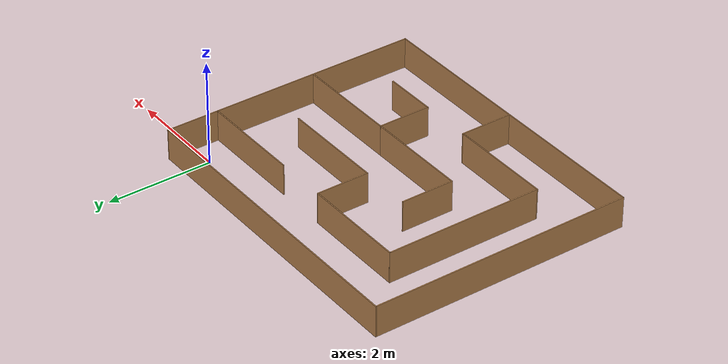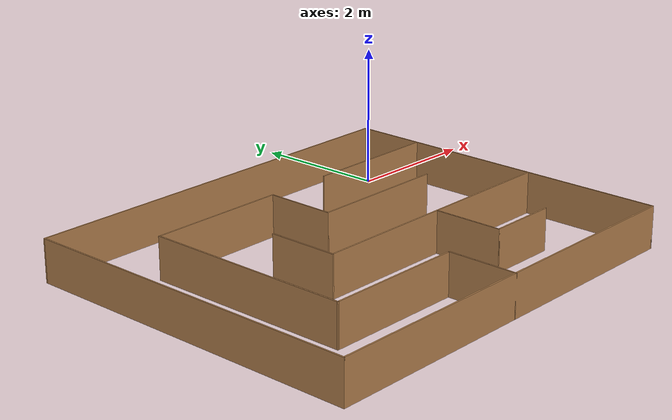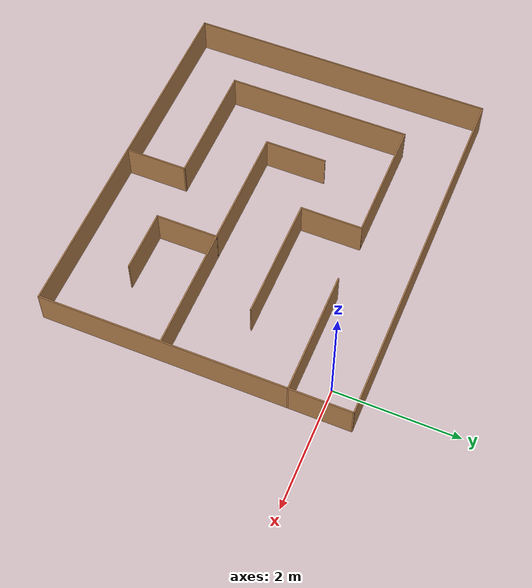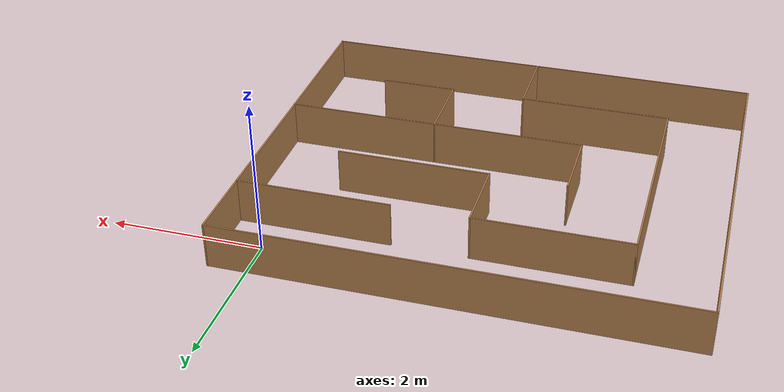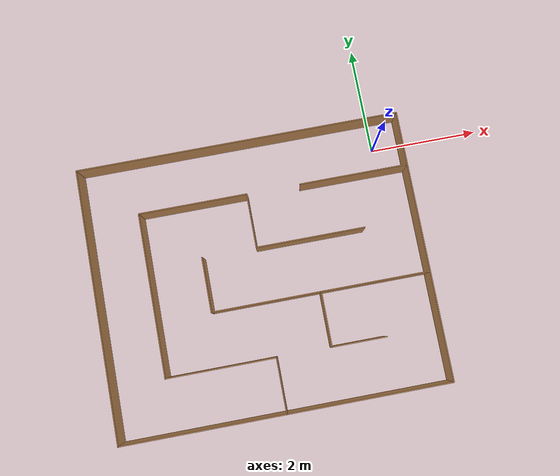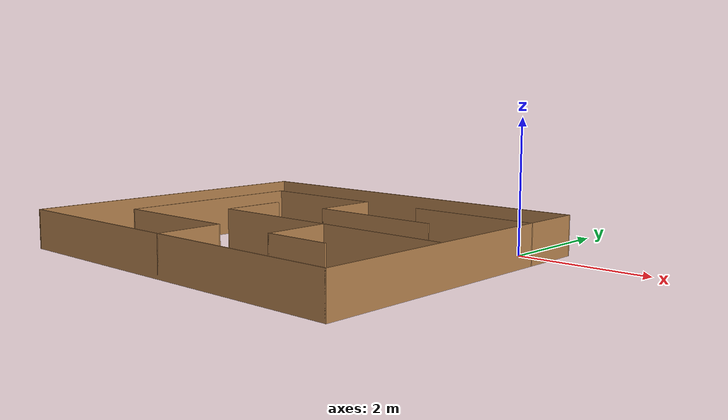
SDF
<?xml version='1.0'?>
<sdf version='1.7'>
  <model name='maze_24'>
    <pose>-2.5 -2 0 0 -0 0</pose>
    <link name='Wall_0'>
      <collision name='Wall_0_Collision'>
        <geometry>
          <box>
            <size>6.02 0.02 0.6</size>
          </box>
        </geometry>
        <pose>0 0 0.3 0 -0 0</pose>
      </collision>
      <visual name='Wall_0_Visual'>
        <pose>0 0 0.3 0 -0 0</pose>
        <geometry>
          <box>
            <size>6.02 0.02 0.6</size>
          </box>
        </geometry>
        <material>
          <script>
            <uri>file://media/materials/scripts/gazebo.material</uri>
            <name>Gazebo/Wood</name>
          </script>
          <ambient>1 1 1 1</ambient>
        </material>
        <meta>
          <layer>0</layer>
        </meta>
      </visual>
      <pose>-0 2.5 0 0 -0 3.14159</pose>
    </link>
    <link name='Wall_10'>
      <collision name='Wall_10_Collision'>
        <geometry>
          <box>
            <size>2.02 0.02 0.6</size>
          </box>
        </geometry>
        <pose>0 0 0.3 0 -0 0</pose>
      </collision>
      <visual name='Wall_10_Visual'>
        <pose>0 0 0.3 0 -0 0</pose>
        <geometry>
          <box>
            <size>2.02 0.02 0.6</size>
          </box>
        </geometry>
        <material>
          <script>
            <uri>file://media/materials/scripts/gazebo.material</uri>
            <name>Gazebo/Wood</name>
          </script>
          <ambient>1 1 1 1</ambient>
        </material>
        <meta>
          <layer>0</layer>
        </meta>
      </visual>
      <pose>-1 -1.5 0 0 -0 3.14159</pose>
    </link>
    <link name='Wall_12'>
      <collision name='Wall_12_Collision'>
        <geometry>
          <box>
            <size>3.02 0.02 0.6</size>
          </box>
        </geometry>
        <pose>0 0 0.3 0 -0 0</pose>
      </collision>
      <visual name='Wall_12_Visual'>
        <pose>0 0 0.3 0 -0 0</pose>
        <geometry>
          <box>
            <size>3.02 0.02 0.6</size>
          </box>
        </geometry>
        <material>
          <script>
            <uri>file://media/materials/scripts/gazebo.material</uri>
            <name>Gazebo/Wood</name>
          </script>
          <ambient>1 1 1 1</ambient>
        </material>
        <meta>
          <layer>0</layer>
        </meta>
      </visual>
      <pose>-2 0 0 0 -0 1.5708</pose>
    </link>
    <link name='Wall_14'>
      <collision name='Wall_14_Collision'>
        <geometry>
          <box>
            <size>2.02 0.02 0.6</size>
          </box>
        </geometry>
        <pose>0 0 0.3 0 -0 0</pose>
      </collision>
      <visual name='Wall_14_Visual'>
        <pose>0 0 0.3 0 -0 0</pose>
        <geometry>
          <box>
            <size>2.02 0.02 0.6</size>
          </box>
        </geometry>
        <material>
          <script>
            <uri>file://media/materials/scripts/gazebo.material</uri>
            <name>Gazebo/Wood</name>
          </script>
          <ambient>1 1 1 1</ambient>
        </material>
        <meta>
          <layer>0</layer>
        </meta>
      </visual>
      <pose>-1 1.5 0 0 -0 0</pose>
    </link>
    <link name='Wall_16'>
      <collision name='Wall_16_Collision'>
        <geometry>
          <box>
            <size>1.02 0.02 0.6</size>
          </box>
        </geometry>
        <pose>0 0 0.3 0 -0 0</pose>
      </collision>
      <visual name='Wall_16_Visual'>
        <pose>0 0 0.3 0 -0 0</pose>
        <geometry>
          <box>
            <size>1.02 0.02 0.6</size>
          </box>
        </geometry>
        <material>
          <script>
            <uri>file://media/materials/scripts/gazebo.material</uri>
            <name>Gazebo/Wood</name>
          </script>
          <ambient>1 1 1 1</ambient>
        </material>
        <meta>
          <layer>0</layer>
        </meta>
      </visual>
      <pose>-1 0 0 0 -0 -1.5708</pose>
    </link>
    <link name='Wall_18'>
      <collision name='Wall_18_Collision'>
        <geometry>
          <box>
            <size>2.02 0.02 0.6</size>
          </box>
        </geometry>
        <pose>0 0 0.3 0 -0 0</pose>
      </collision>
      <visual name='Wall_18_Visual'>
        <pose>0 0 0.3 0 -0 0</pose>
        <geometry>
          <box>
            <size>2.02 0.02 0.6</size>
          </box>
        </geometry>
        <material>
          <script>
            <uri>file://media/materials/scripts/gazebo.material</uri>
            <name>Gazebo/Wood</name>
          </script>
          <ambient>1 1 1 1</ambient>
        </material>
        <meta>
          <layer>0</layer>
        </meta>
      </visual>
      <pose>-0 -0.5 0 0 -0 0</pose>
    </link>
    <link name='Wall_2'>
      <collision name='Wall_2_Collision'>
        <geometry>
          <box>
            <size>5.02 0.02 0.6</size>
          </box>
        </geometry>
        <pose>0 0 0.3 0 -0 0</pose>
      </collision>
      <visual name='Wall_2_Visual'>
        <pose>0 0 0.3 0 -0 0</pose>
        <geometry>
          <box>
            <size>5.02 0.02 0.6</size>
          </box>
        </geometry>
        <material>
          <script>
            <uri>file://media/materials/scripts/gazebo.material</uri>
            <name>Gazebo/Wood</name>
          </script>
          <ambient>1 1 1 1</ambient>
        </material>
        <meta>
          <layer>0</layer>
        </meta>
      </visual>
      <pose>-3 0 0 0 -0 -1.5708</pose>
    </link>
    <link name='Wall_20'>
      <collision name='Wall_20_Collision'>
        <geometry>
          <box>
            <size>1.02 0.02 0.6</size>
          </box>
        </geometry>
        <pose>0 0 0.3 0 -0 0</pose>
      </collision>
      <visual name='Wall_20_Visual'>
        <pose>0 0 0.3 0 -0 0</pose>
        <geometry>
          <box>
            <size>1.02 0.02 0.6</size>
          </box>
        </geometry>
        <material>
          <script>
            <uri>file://media/materials/scripts/gazebo.material</uri>
            <name>Gazebo/Wood</name>
          </script>
          <ambient>1 1 1 1</ambient>
        </material>
        <meta>
          <layer>0</layer>
        </meta>
      </visual>
      <pose>1 -1 0 0 -0 -1.5708</pose>
    </link>
    <link name='Wall_21'>
      <collision name='Wall_21_Collision'>
        <geometry>
          <box>
            <size>1.02 0.02 0.6</size>
          </box>
        </geometry>
        <pose>0 0 0.3 0 -0 0</pose>
      </collision>
      <visual name='Wall_21_Visual'>
        <pose>0 0 0.3 0 -0 0</pose>
        <geometry>
          <box>
            <size>1.02 0.02 0.6</size>
          </box>
        </geometry>
        <material>
          <script>
            <uri>file://media/materials/scripts/gazebo.material</uri>
            <name>Gazebo/Wood</name>
          </script>
          <ambient>1 1 1 1</ambient>
        </material>
        <meta>
          <layer>0</layer>
        </meta>
      </visual>
      <pose>1.5 -1.5 0 0 -0 0</pose>
    </link>
    <link name='Wall_23'>
      <collision name='Wall_23_Collision'>
        <geometry>
          <box>
            <size>2.02 0.02 0.6</size>
          </box>
        </geometry>
        <pose>0 0 0.3 0 -0 0</pose>
      </collision>
      <visual name='Wall_23_Visual'>
        <pose>0 0 0.3 0 -0 0</pose>
        <geometry>
          <box>
            <size>2.02 0.02 0.6</size>
          </box>
        </geometry>
        <material>
          <script>
            <uri>file://media/materials/scripts/gazebo.material</uri>
            <name>Gazebo/Wood</name>
          </script>
          <ambient>1 1 1 1</ambient>
        </material>
        <meta>
          <layer>0</layer>
        </meta>
      </visual>
      <pose>2 -0.5 0 0 -0 0</pose>
    </link>
    <link name='Wall_25'>
      <collision name='Wall_25_Collision'>
        <geometry>
          <box>
            <size>1.02 0.02 0.6</size>
          </box>
        </geometry>
        <pose>0 0 0.3 0 -0 0</pose>
      </collision>
      <visual name='Wall_25_Visual'>
        <pose>0 0 0.3 0 -0 0</pose>
        <geometry>
          <box>
            <size>1.02 0.02 0.6</size>
          </box>
        </geometry>
        <material>
          <script>
            <uri>file://media/materials/scripts/gazebo.material</uri>
            <name>Gazebo/Wood</name>
          </script>
          <ambient>1 1 1 1</ambient>
        </material>
        <meta>
          <layer>0</layer>
        </meta>
      </visual>
      <pose>-0 1 0 0 -0 -1.5708</pose>
    </link>
    <link name='Wall_27'>
      <collision name='Wall_27_Collision'>
        <geometry>
          <box>
            <size>2.02 0.02 0.6</size>
          </box>
        </geometry>
        <pose>0 0 0.3 0 -0 0</pose>
      </collision>
      <visual name='Wall_27_Visual'>
        <pose>0 0 0.3 0 -0 0</pose>
        <geometry>
          <box>
            <size>2.02 0.02 0.6</size>
          </box>
        </geometry>
        <material>
          <script>
            <uri>file://media/materials/scripts/gazebo.material</uri>
            <name>Gazebo/Wood</name>
          </script>
          <ambient>1 1 1 1</ambient>
        </material>
        <meta>
          <layer>0</layer>
        </meta>
      </visual>
      <pose>2 1.5 0 0 -0 0</pose>
    </link>
    <link name='Wall_29'>
      <collision name='Wall_29_Collision'>
        <geometry>
          <box>
            <size>2.02 0.02 0.6</size>
          </box>
        </geometry>
        <pose>0 0 0.3 0 -0 0</pose>
      </collision>
      <visual name='Wall_29_Visual'>
        <pose>0 0 0.3 0 -0 0</pose>
        <geometry>
          <box>
            <size>2.02 0.02 0.6</size>
          </box>
        </geometry>
        <material>
          <script>
            <uri>file://media/materials/scripts/gazebo.material</uri>
            <name>Gazebo/Wood</name>
          </script>
          <ambient>1 1 1 1</ambient>
        </material>
        <meta>
          <layer>0</layer>
        </meta>
      </visual>
      <pose>1 0.5 0 0 -0 0</pose>
    </link>
    <link name='Wall_4'>
      <collision name='Wall_4_Collision'>
        <geometry>
          <box>
            <size>6.02 0.02 0.6</size>
          </box>
        </geometry>
        <pose>0 0 0.3 0 -0 0</pose>
      </collision>
      <visual name='Wall_4_Visual'>
        <pose>0 0 0.3 0 -0 0</pose>
        <geometry>
          <box>
            <size>6.02 0.02 0.6</size>
          </box>
        </geometry>
        <material>
          <script>
            <uri>file://media/materials/scripts/gazebo.material</uri>
            <name>Gazebo/Wood</name>
          </script>
          <ambient>1 1 1 1</ambient>
        </material>
        <meta>
          <layer>0</layer>
        </meta>
      </visual>
      <pose>-0 -2.5 0 0 -0 0</pose>
    </link>
    <link name='Wall_6'>
      <collision name='Wall_6_Collision'>
        <geometry>
          <box>
            <size>5.02 0.02 0.6</size>
          </box>
        </geometry>
        <pose>0 0 0.3 0 -0 0</pose>
      </collision>
      <visual name='Wall_6_Visual'>
        <pose>0 0 0.3 0 -0 0</pose>
        <geometry>
          <box>
            <size>5.02 0.02 0.6</size>
          </box>
        </geometry>
        <material>
          <script>
            <uri>file://media/materials/scripts/gazebo.material</uri>
            <name>Gazebo/Wood</name>
          </script>
          <ambient>1 1 1 1</ambient>
        </material>
        <meta>
          <layer>0</layer>
        </meta>
      </visual>
      <pose>3 0 0 0 -0 1.5708</pose>
    </link>
    <link name='Wall_8'>
      <collision name='Wall_8_Collision'>
        <geometry>
          <box>
            <size>1.02 0.02 0.6</size>
          </box>
        </geometry>
        <pose>0 0 0.3 0 -0 0</pose>
      </collision>
      <visual name='Wall_8_Visual'>
        <pose>0 0 0.3 0 -0 0</pose>
        <geometry>
          <box>
            <size>1.02 0.02 0.6</size>
          </box>
        </geometry>
        <material>
          <script>
            <uri>file://media/materials/scripts/gazebo.material</uri>
            <name>Gazebo/Wood</name>
          </script>
          <ambient>1 1 1 1</ambient>
        </material>
        <meta>
          <layer>0</layer>
        </meta>
      </visual>
      <pose>-0 -2 0 0 -0 1.5708</pose>
    </link>
    <static>1</static>
  </model>
</sdf>
